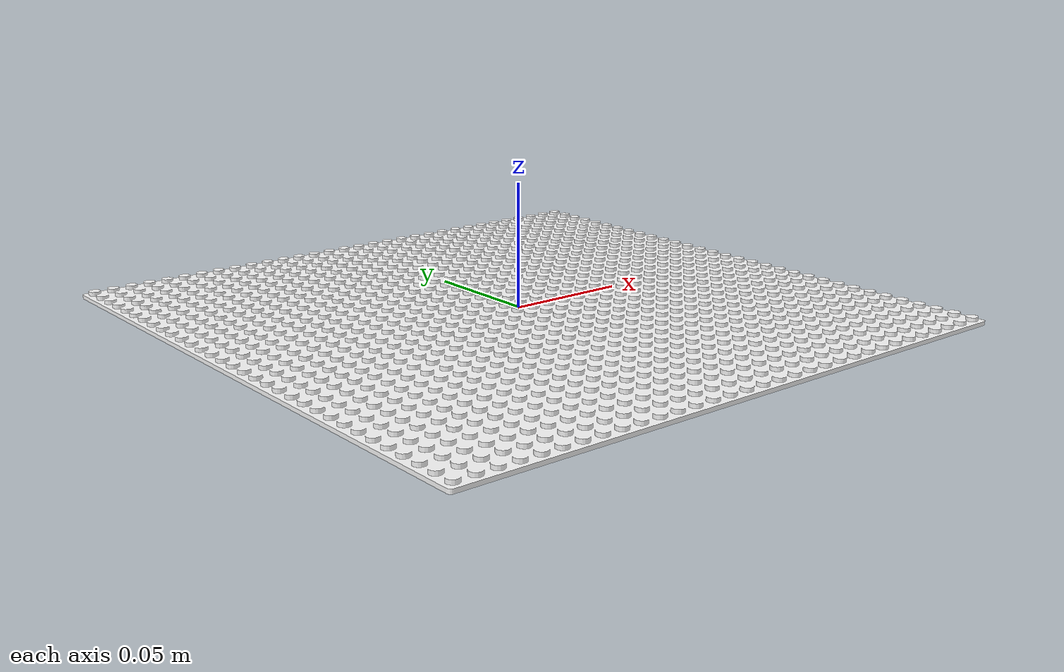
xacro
<?xml version="1.0" encoding="utf-8"?>
<robot
  name="base_plate32" xmlns:xacro="http://ros.org/wiki/xacro">
  <xacro:macro name="base_plate32">
  <xacro:arg name="plate_color" default="Orange" />
  <xacro:property name="scale" value="0.001"/>
  <xacro:property name="color" value="$(arg plate_color)"/>

  <link
    name="plate">
    <inertial>
      <origin
        xyz="0 0 0"
        rpy="0 0 0" />
      <mass
        value="0.001" />
      <inertia
        ixx="0"
        ixy="-0.0"
        ixz="0.0"
        iyy="0.0"
        iyz="0.0"
        izz="0.0" />
    </inertial>
    <visual>
      <origin
        xyz="0 0 0"
        rpy="0 0 0" />
      <geometry>
        <mesh scale="${scale} ${scale} ${scale}"
          filename="file://$(find robot_digital_twin)/meshes/lego/base32x32.stl"/>
      </geometry>
      <material
        name="">
        <color
          rgba="1 1 1 1" />
      </material>
    </visual>
    <gravity>0</gravity>
  </link>

  <gazebo reference="plate">
  <kinematic>true</kinematic>
  <xacro:if value="${color == 'Orange'}">
     <material>Gazebo/Orange</material>
    </xacro:if>
    <xacro:if value="${color == 'Green'}">
     <material>Gazebo/Green</material>
    </xacro:if>
    <xacro:if value="${color == 'Black'}">
     <material>Gazebo/Black</material>
    </xacro:if>
    <xacro:if value="${color == 'Blue'}">
     <material>Gazebo/Blue</material>
     </xacro:if>
     <xacro:if value="${color == 'Yellow'}">
     <material>Gazebo/Yellow</material>
    </xacro:if>
    <xacro:if value="${color == 'Red'}">
     <material>Gazebo/Red</material>
    </xacro:if>
    <xacro:if value="${color == 'White'}">
     <material>Gazebo/White</material>
    </xacro:if>
    <xacro:if value="${color == 'Grey'}">
     <material>Gazebo/Grey</material>
    </xacro:if>
    <xacro:if value="${color == 'Purple'}">
     <material>Gazebo/Purple</material>
    </xacro:if>
    <visual> <transparency> 0 </transparency> </visual>
  </gazebo>
  </xacro:macro>

  <xacro:base_plate32>
  </xacro:base_plate32>

</robot>
